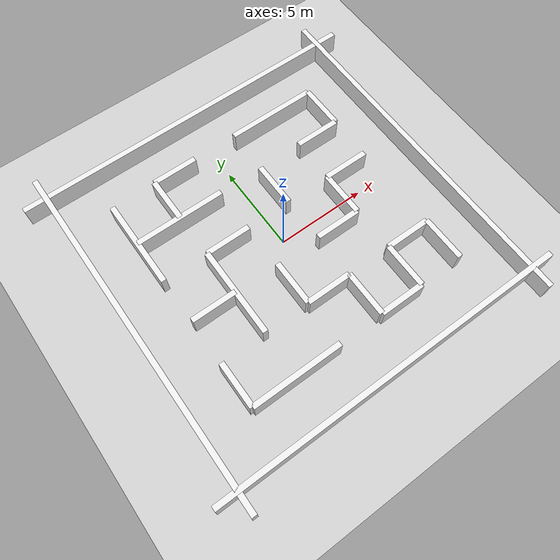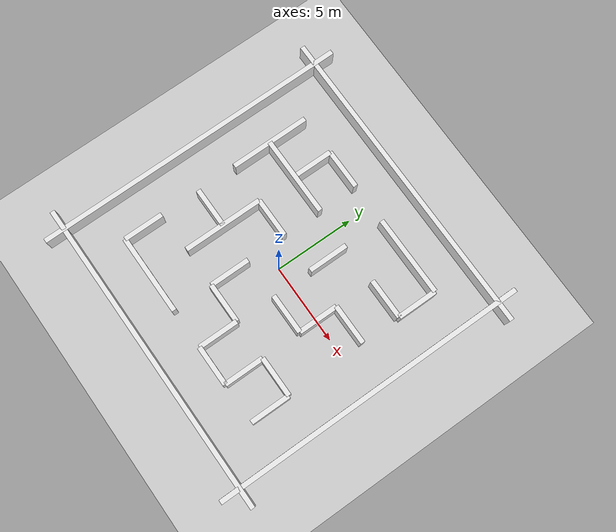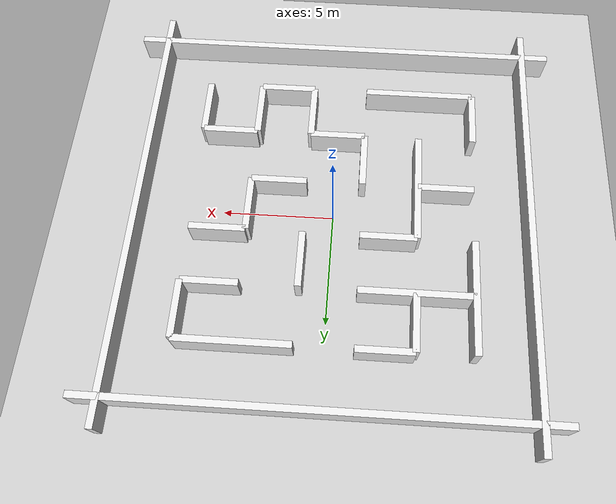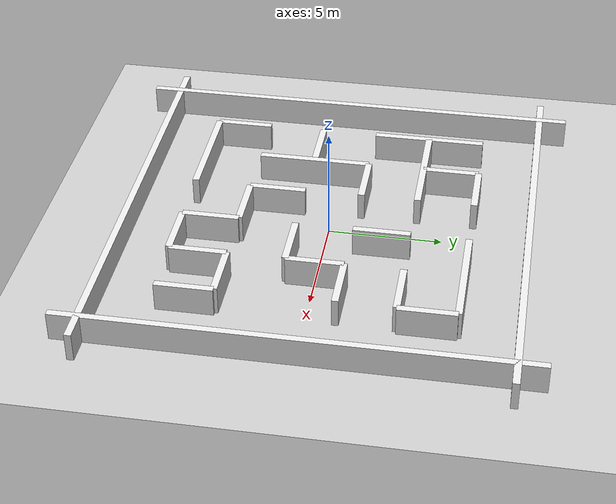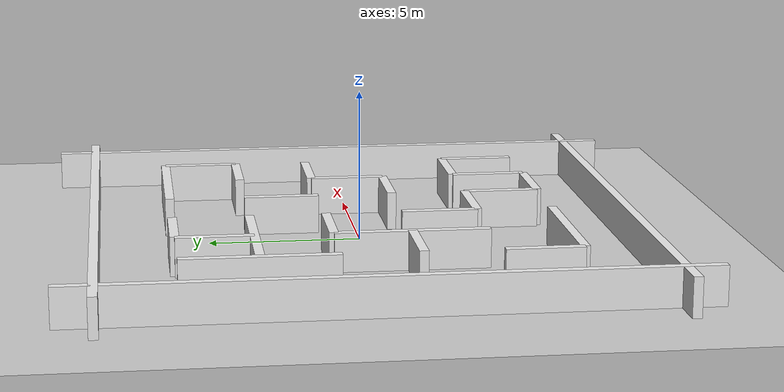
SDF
<?xml version="1.0"?>
<!-- Seed: 4020 -->
<sdf version="1.9">
  <world name="virtual_maize_field">
    <!-- Change max step size to increase the simulation speed but decrease the accuracy. -->
    <physics type="ode">
      <real_time_update_rate>1000.0</real_time_update_rate>
      <max_step_size>0.001</max_step_size>
      <real_time_factor>1</real_time_factor>
      <ode>
        <solver>
          <type>quick</type>
          <iters>150</iters>
          <precon_iters>0</precon_iters>
          <sor>1.400000</sor>
          <use_dynamic_moi_rescaling>1</use_dynamic_moi_rescaling>
        </solver>
        <constraints>
          <cfm>0.00001</cfm>
          <erp>0.2</erp>
          <contact_max_correcting_vel>2000.000000</contact_max_correcting_vel>
          <contact_surface_layer>0.01000</contact_surface_layer>
        </constraints>
      </ode>
    </physics>
    <render_engine>ogre2</render_engine>
    <plugin name='gz::sim::systems::Physics' filename='gz-sim-physics-system'/>
    <plugin name='gz::sim::systems::UserCommands' filename='gz-sim-user-commands-system'/>
    <plugin name='gz::sim::systems::SceneBroadcaster' filename='gz-sim-scene-broadcaster-system'/>
    <plugin name='gz::sim::systems::Contact' filename='gz-sim-contact-system'/>
    <plugin name='gz::sim::systems::Imu' filename='gz-sim-imu-system'/>
    <plugin name='gz::sim::systems::AirPressure' filename='gz-sim-air-pressure-system'/>
    <plugin filename="gz-sim-navsat-system" name="gz::sim::systems::NavSat"/>
    <plugin filename="gz-sim-sensors-system" name="gz::sim::systems::Sensors">
      <render_engine>ogre2</render_engine>
    </plugin>

    <gui fullscreen="0">
        <!-- 3D scene -->
      <plugin filename="GzScene3D" name="3D View">
      <ignition-gui>
          <title>3D View</title>
          <property type="bool" key="showTitleBar">false</property>
          <property type="string" key="state">docked</property>
      </ignition-gui>

    <engine>ogre2</engine>
      <scene>scene</scene>
      <ambient_light>1.0 1.0 1.0</ambient_light>
      <background_color>0.8 0.8 0.8</background_color>
      <camera_pose>-6 0 6 0 0.5 0</camera_pose>
    </plugin>

    <!-- World control -->
    <plugin filename="WorldControl" name="World control">
      <ignition-gui>
        <title>World control</title>
        <property type="bool" key="showTitleBar">false</property>
        <property type="bool" key="resizable">false</property>
        <property type="double" key="height">72</property>
        <property type="double" key="width">121</property>
        <property type="double" key="z">1</property>

        <property type="string" key="state">floating</property>
        <anchors target="3D View">
          <line own="left" target="left"/>
          <line own="bottom" target="bottom"/>
        </anchors>
      </ignition-gui>

      <play_pause>true</play_pause>
      <step>true</step>
      <service>/world/virtual_maize_field/control</service>
      <stats_topic>/world/virtual_maize_field/stats</stats_topic>

    </plugin>

    <!-- World statistics -->
    <plugin filename="WorldStats" name="World stats">
        <ignition-gui>
            <title>World stats</title>
            <property type="bool" key="showTitleBar">false</property>
            <property type="bool" key="resizable">false</property>
            <property type="double" key="height">110</property>
            <property type="double" key="width">290</property>
            <property type="double" key="z">1</property>

            <property type="string" key="state">floating</property>
            <anchors target="3D View">
            <line own="right" target="right"/>
            <line own="bottom" target="bottom"/>
            </anchors>
        </ignition-gui>

        <sim_time>true</sim_time>
        <real_time>true</real_time>
        <real_time_factor>true</real_time_factor>
        <iterations>true</iterations>
        <topic>/world/virtual_maize_field/stats</topic>

    </plugin>

    <!-- Entity tree -->
    <plugin filename="EntityTree" name="Entity tree">
    </plugin>
  </gui>

    <light type="directional" name="sun">
      <!-- Disable shadows to avoid flickering on non-gpu pc, see:
           https://github.com/gazebosim/gz-sim/issues/2267 -->
      <cast_shadows>false</cast_shadows>
      <pose>0 0 10 0 0 0</pose>
      <diffuse>0.8 0.8 0.8 1</diffuse>
      <specular>0.2 0.2 0.2 1</specular>
      <attenuation>
        <range>1000</range>
        <constant>0.9</constant>
        <linear>0.01</linear>
        <quadratic>0.001</quadratic>
      </attenuation>
      <direction>-0.5 0.1 -0.9</direction>
    </light>

    <spherical_coordinates>
      <surface_model>EARTH_WGS84</surface_model>
      <latitude_deg>27.9162477</latitude_deg>
      <longitude_deg>30.5634376</longitude_deg>
      <elevation>0</elevation>
      <heading_deg>0</heading_deg>
    </spherical_coordinates>

    <model name="ground_plane">
      <static>true</static>
      <link name="link">
        <collision name="collision">
          <geometry>
            <plane>
              <normal>0 0 1</normal>
              <size>1000 1000</size>
            </plane>
          </geometry>
        </collision>
        <visual name="visual">
          <geometry>
            <plane>
              <normal>0 0 1</normal>
              <size>1000 1000</size>
            </plane>
          </geometry>
          <material>
            <ambient>0.8 0.8 0.8 1</ambient>
            <diffuse>0.8 0.8 0.8 1</diffuse>
            <specular>0.8 0.8 0.8 1</specular>
          </material>
        </visual>
      </link>
    </model>

    <!-- place maze walls -->
    <model name='wall_01'>
      <pose>6.25 5.0 0.5 0 0 1.57</pose>
      <static>true</static>
      <link name='link'>
        <collision name='collision'>
          <geometry>
            <box>
              <size>2.5 0.3 1.5</size>
            </box>
          </geometry>
        </collision>
        <visual name='visual'>
          <geometry>
            <box>
              <size>2.5 0.3 1.5</size>
            </box>
          </geometry>
          <material>
            <script>
              <uri>file://media/materials/scripts/gazebo.material</uri>
              <name>Gazebo/White</name>
            </script>
          </material>
        </visual>
      </link>
    </model>

    <model name='wall_02'>
      <pose>6.25 -5.0 0.5 0 0 1.57</pose>
      <static>true</static>
      <link name='link'>
        <collision name='collision'>
          <geometry>
            <box>
              <size>2.5 0.3 1.5</size>
            </box>
          </geometry>
        </collision>
        <visual name='visual'>
          <geometry>
            <box>
              <size>2.5 0.3 1.5</size>
            </box>
          </geometry>
          <material>
            <script>
              <uri>file://media/materials/scripts/gazebo.material</uri>
              <name>Gazebo/White</name>
            </script>
          </material>
        </visual>
      </link>
    </model>

    <model name='wall_03'>
      <pose>3.75 0.0 0.5 0 0 1.57</pose>
      <static>true</static>
      <link name='link'>
        <collision name='collision'>
          <geometry>
            <box>
              <size>2.5 0.3 1.5</size>
            </box>
          </geometry>
        </collision>
        <visual name='visual'>
          <geometry>
            <box>
              <size>2.5 0.3 1.5</size>
            </box>
          </geometry>
          <material>
            <script>
              <uri>file://media/materials/scripts/gazebo.material</uri>
              <name>Gazebo/White</name>
            </script>
          </material>
        </visual>
      </link>
    </model>

    <model name='wall_04'>
      <pose>3.75 -5.0 0.5 0 0 1.57</pose>
      <static>true</static>
      <link name='link'>
        <collision name='collision'>
          <geometry>
            <box>
              <size>2.5 0.3 1.5</size>
            </box>
          </geometry>
        </collision>
        <visual name='visual'>
          <geometry>
            <box>
              <size>2.5 0.3 1.5</size>
            </box>
          </geometry>
          <material>
            <script>
              <uri>file://media/materials/scripts/gazebo.material</uri>
              <name>Gazebo/White</name>
            </script>
          </material>
        </visual>
      </link>
    </model>

    <model name='wall_05'>
      <pose>1.25 2.5 0.5 0 0 1.57</pose>
      <static>true</static>
      <link name='link'>
        <collision name='collision'>
          <geometry>
            <box>
              <size>2.5 0.3 1.5</size>
            </box>
          </geometry>
        </collision>
        <visual name='visual'>
          <geometry>
            <box>
              <size>2.5 0.3 1.5</size>
            </box>
          </geometry>
          <material>
            <script>
              <uri>file://media/materials/scripts/gazebo.material</uri>
              <name>Gazebo/White</name>
            </script>
          </material>
        </visual>
      </link>
    </model>

    <model name='wall_06'>
      <pose>1.25 -5.0 0.5 0 0 1.57</pose>
      <static>true</static>
      <link name='link'>
        <collision name='collision'>
          <geometry>
            <box>
              <size>2.5 0.3 1.5</size>
            </box>
          </geometry>
        </collision>
        <visual name='visual'>
          <geometry>
            <box>
              <size>2.5 0.3 1.5</size>
            </box>
          </geometry>
          <material>
            <script>
              <uri>file://media/materials/scripts/gazebo.material</uri>
              <name>Gazebo/White</name>
            </script>
          </material>
        </visual>
      </link>
    </model>

    <model name='wall_07'>
      <pose>3.75 6.25 0.5 0 0 0.0</pose>
      <static>true</static>
      <link name='link'>
        <collision name='collision'>
          <geometry>
            <box>
              <size>5.0 0.3 1.5</size>
            </box>
          </geometry>
        </collision>
        <visual name='visual'>
          <geometry>
            <box>
              <size>5.0 0.3 1.5</size>
            </box>
          </geometry>
          <material>
            <script>
              <uri>file://media/materials/scripts/gazebo.material</uri>
              <name>Gazebo/White</name>
            </script>
          </material>
        </visual>
      </link>
    </model>

    <model name='wall_08'>
      <pose>5.0 3.75 0.5 0 0 0.0</pose>
      <static>true</static>
      <link name='link'>
        <collision name='collision'>
          <geometry>
            <box>
              <size>2.5 0.3 1.5</size>
            </box>
          </geometry>
        </collision>
        <visual name='visual'>
          <geometry>
            <box>
              <size>2.5 0.3 1.5</size>
            </box>
          </geometry>
          <material>
            <script>
              <uri>file://media/materials/scripts/gazebo.material</uri>
              <name>Gazebo/White</name>
            </script>
          </material>
        </visual>
      </link>
    </model>

    <model name='wall_09'>
      <pose>5.0 1.25 0.5 0 0 0.0</pose>
      <static>true</static>
      <link name='link'>
        <collision name='collision'>
          <geometry>
            <box>
              <size>2.5 0.3 1.5</size>
            </box>
          </geometry>
        </collision>
        <visual name='visual'>
          <geometry>
            <box>
              <size>2.5 0.3 1.5</size>
            </box>
          </geometry>
          <material>
            <script>
              <uri>file://media/materials/scripts/gazebo.material</uri>
              <name>Gazebo/White</name>
            </script>
          </material>
        </visual>
      </link>
    </model>

    <model name='wall_10'>
      <pose>2.5 -1.25 0.5 0 0 0.0</pose>
      <static>true</static>
      <link name='link'>
        <collision name='collision'>
          <geometry>
            <box>
              <size>2.5 0.3 1.5</size>
            </box>
          </geometry>
        </collision>
        <visual name='visual'>
          <geometry>
            <box>
              <size>2.5 0.3 1.5</size>
            </box>
          </geometry>
          <material>
            <script>
              <uri>file://media/materials/scripts/gazebo.material</uri>
              <name>Gazebo/White</name>
            </script>
          </material>
        </visual>
      </link>
    </model>

    <model name='wall_11'>
      <pose>5.0 -3.75 0.5 0 0 0.0</pose>
      <static>true</static>
      <link name='link'>
        <collision name='collision'>
          <geometry>
            <box>
              <size>2.5 0.3 1.5</size>
            </box>
          </geometry>
        </collision>
        <visual name='visual'>
          <geometry>
            <box>
              <size>2.5 0.3 1.5</size>
            </box>
          </geometry>
          <material>
            <script>
              <uri>file://media/materials/scripts/gazebo.material</uri>
              <name>Gazebo/White</name>
            </script>
          </material>
        </visual>
      </link>
    </model>

    <model name='wall_12'>
      <pose>2.5 -6.25 0.5 0 0 0.0</pose>
      <static>true</static>
      <link name='link'>
        <collision name='collision'>
          <geometry>
            <box>
              <size>2.5 0.3 1.5</size>
            </box>
          </geometry>
        </collision>
        <visual name='visual'>
          <geometry>
            <box>
              <size>2.5 0.3 1.5</size>
            </box>
          </geometry>
          <material>
            <script>
              <uri>file://media/materials/scripts/gazebo.material</uri>
              <name>Gazebo/White</name>
            </script>
          </material>
        </visual>
      </link>
    </model>

    <model name='wall_13'>
      <pose>0.0 -3.75 0.5 0 0 0.0</pose>
      <static>true</static>
      <link name='link'>
        <collision name='collision'>
          <geometry>
            <box>
              <size>2.5 0.3 1.5</size>
            </box>
          </geometry>
        </collision>
        <visual name='visual'>
          <geometry>
            <box>
              <size>2.5 0.3 1.5</size>
            </box>
          </geometry>
          <material>
            <script>
              <uri>file://media/materials/scripts/gazebo.material</uri>
              <name>Gazebo/White</name>
            </script>
          </material>
        </visual>
      </link>
    </model>

    <model name='wall_14'>
      <pose>-1.25 -2.5 0.5 0 0 1.57</pose>
      <static>true</static>
      <link name='link'>
        <collision name='collision'>
          <geometry>
            <box>
              <size>2.5 0.3 1.5</size>
            </box>
          </geometry>
        </collision>
        <visual name='visual'>
          <geometry>
            <box>
              <size>2.5 0.3 1.5</size>
            </box>
          </geometry>
          <material>
            <script>
              <uri>file://media/materials/scripts/gazebo.material</uri>
              <name>Gazebo/White</name>
            </script>
          </material>
        </visual>
      </link>
    </model>

    <model name='wall_15'>
      <pose>-3.75 5.0 0.5 0 0 1.57</pose>
      <static>true</static>
      <link name='link'>
        <collision name='collision'>
          <geometry>
            <box>
              <size>2.5 0.3 1.5</size>
            </box>
          </geometry>
        </collision>
        <visual name='visual'>
          <geometry>
            <box>
              <size>2.5 0.3 1.5</size>
            </box>
          </geometry>
          <material>
            <script>
              <uri>file://media/materials/scripts/gazebo.material</uri>
              <name>Gazebo/White</name>
            </script>
          </material>
        </visual>
      </link>
    </model>

    <model name='wall_16'>
      <pose>-3.75 -1.25 0.5 0 0 1.57</pose>
      <static>true</static>
      <link name='link'>
        <collision name='collision'>
          <geometry>
            <box>
              <size>5.0 0.3 1.5</size>
            </box>
          </geometry>
        </collision>
        <visual name='visual'>
          <geometry>
            <box>
              <size>5.0 0.3 1.5</size>
            </box>
          </geometry>
          <material>
            <script>
              <uri>file://media/materials/scripts/gazebo.material</uri>
              <name>Gazebo/White</name>
            </script>
          </material>
        </visual>
      </link>
    </model>

    <model name='wall_17'>
      <pose>-6.25 3.75 0.5 0 0 1.57</pose>
      <static>true</static>
      <link name='link'>
        <collision name='collision'>
          <geometry>
            <box>
              <size>5.0 0.3 1.5</size>
            </box>
          </geometry>
        </collision>
        <visual name='visual'>
          <geometry>
            <box>
              <size>5.0 0.3 1.5</size>
            </box>
          </geometry>
          <material>
            <script>
              <uri>file://media/materials/scripts/gazebo.material</uri>
              <name>Gazebo/White</name>
            </script>
          </material>
        </visual>
      </link>
    </model>

    <model name='wall_18'>
      <pose>-6.25 -5.0 0.5 0 0 1.57</pose>
      <static>true</static>
      <link name='link'>
        <collision name='collision'>
          <geometry>
            <box>
              <size>2.5 0.3 1.5</size>
            </box>
          </geometry>
        </collision>
        <visual name='visual'>
          <geometry>
            <box>
              <size>2.5 0.3 1.5</size>
            </box>
          </geometry>
          <material>
            <script>
              <uri>file://media/materials/scripts/gazebo.material</uri>
              <name>Gazebo/White</name>
            </script>
          </material>
        </visual>
      </link>
    </model>

    <model name='wall_19'>
      <pose>-2.5 6.25 0.5 0 0 0.0</pose>
      <static>true</static>
      <link name='link'>
        <collision name='collision'>
          <geometry>
            <box>
              <size>2.5 0.3 1.5</size>
            </box>
          </geometry>
        </collision>
        <visual name='visual'>
          <geometry>
            <box>
              <size>2.5 0.3 1.5</size>
            </box>
          </geometry>
          <material>
            <script>
              <uri>file://media/materials/scripts/gazebo.material</uri>
              <name>Gazebo/White</name>
            </script>
          </material>
        </visual>
      </link>
    </model>

    <model name='wall_20'>
      <pose>-3.75 3.75 0.5 0 0 0.0</pose>
      <static>true</static>
      <link name='link'>
        <collision name='collision'>
          <geometry>
            <box>
              <size>5.0 0.3 1.5</size>
            </box>
          </geometry>
        </collision>
        <visual name='visual'>
          <geometry>
            <box>
              <size>5.0 0.3 1.5</size>
            </box>
          </geometry>
          <material>
            <script>
              <uri>file://media/materials/scripts/gazebo.material</uri>
              <name>Gazebo/White</name>
            </script>
          </material>
        </visual>
      </link>
    </model>

    <model name='wall_21'>
      <pose>-2.5 1.25 0.5 0 0 0.0</pose>
      <static>true</static>
      <link name='link'>
        <collision name='collision'>
          <geometry>
            <box>
              <size>2.5 0.3 1.5</size>
            </box>
          </geometry>
        </collision>
        <visual name='visual'>
          <geometry>
            <box>
              <size>2.5 0.3 1.5</size>
            </box>
          </geometry>
          <material>
            <script>
              <uri>file://media/materials/scripts/gazebo.material</uri>
              <name>Gazebo/White</name>
            </script>
          </material>
        </visual>
      </link>
    </model>

    <model name='wall_22'>
      <pose>-5.0 -1.25 0.5 0 0 0.0</pose>
      <static>true</static>
      <link name='link'>
        <collision name='collision'>
          <geometry>
            <box>
              <size>2.5 0.3 1.5</size>
            </box>
          </geometry>
        </collision>
        <visual name='visual'>
          <geometry>
            <box>
              <size>2.5 0.3 1.5</size>
            </box>
          </geometry>
          <material>
            <script>
              <uri>file://media/materials/scripts/gazebo.material</uri>
              <name>Gazebo/White</name>
            </script>
          </material>
        </visual>
      </link>
    </model>

    <model name='wall_23'>
      <pose>-3.75 -6.25 0.5 0 0 0.0</pose>
      <static>true</static>
      <link name='link'>
        <collision name='collision'>
          <geometry>
            <box>
              <size>5.0 0.3 1.5</size>
            </box>
          </geometry>
        </collision>
        <visual name='visual'>
          <geometry>
            <box>
              <size>5.0 0.3 1.5</size>
            </box>
          </geometry>
          <material>
            <script>
              <uri>file://media/materials/scripts/gazebo.material</uri>
              <name>Gazebo/White</name>
            </script>
          </material>
        </visual>
      </link>
    </model>

    <!-- place outer walls -->
    <model name='wall_north'>
      <pose>8.75 0.0 0.5 0 0 1.57</pose>
      <static>true</static>
      <link name='link'>
        <collision name='collision'>
          <geometry>
            <box>
              <size>20.0 0.3 1.5</size>
            </box>
          </geometry>
        </collision>
        <visual name='visual'>
          <geometry>
            <box>
              <size>20.0 0.3 1.5</size>
            </box>
          </geometry>
          <material>
            <script>
              <uri>file://media/materials/scripts/gazebo.material</uri>
              <name>Gazebo/White</name>
            </script>
          </material>
        </visual>
      </link>
    </model>

    <model name='wall_south'>
      <pose>-8.75 0.0 0.5 0 0 1.57</pose>
      <static>true</static>
      <link name='link'>
        <collision name='collision'>
          <geometry>
            <box>
              <size>20.0 0.3 1.5</size>
            </box>
          </geometry>
        </collision>
        <visual name='visual'>
          <geometry>
            <box>
              <size>20.0 0.3 1.5</size>
            </box>
          </geometry>
          <material>
            <script>
              <uri>file://media/materials/scripts/gazebo.material</uri>
              <name>Gazebo/White</name>
            </script>
          </material>
        </visual>
      </link>
    </model>

    <model name='wall_west'>
      <pose>0.0 8.75 0.5 0 0 0.0</pose>
      <static>true</static>
      <link name='link'>
        <collision name='collision'>
          <geometry>
            <box>
              <size>20.0 0.3 1.5</size>
            </box>
          </geometry>
        </collision>
        <visual name='visual'>
          <geometry>
            <box>
              <size>20.0 0.3 1.5</size>
            </box>
          </geometry>
          <material>
            <script>
              <uri>file://media/materials/scripts/gazebo.material</uri>
              <name>Gazebo/White</name>
            </script>
          </material>
        </visual>
      </link>
    </model>

    <model name='wall_east'>
      <pose>0.0 -8.75 0.5 0 0 0.0</pose>
      <static>true</static>
      <link name='link'>
        <collision name='collision'>
          <geometry>
            <box>
              <size>20.0 0.3 1.5</size>
            </box>
          </geometry>
        </collision>
        <visual name='visual'>
          <geometry>
            <box>
              <size>20.0 0.3 1.5</size>
            </box>
          </geometry>
          <material>
            <script>
              <uri>file://media/materials/scripts/gazebo.material</uri>
              <name>Gazebo/White</name>
            </script>
          </material>
        </visual>
      </link>
    </model>
    </world>
</sdf>
